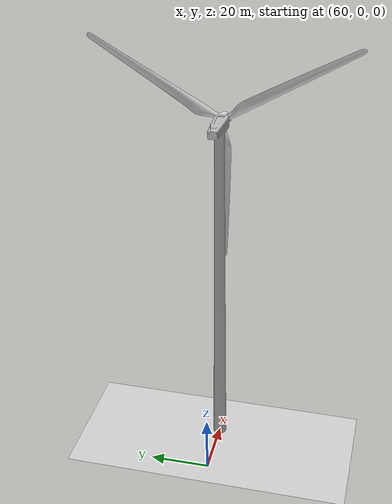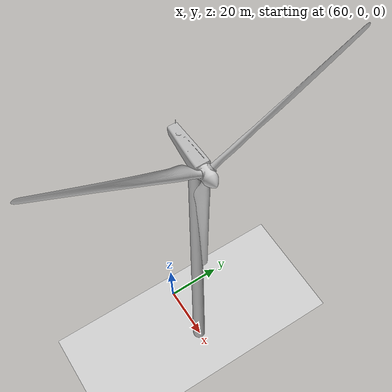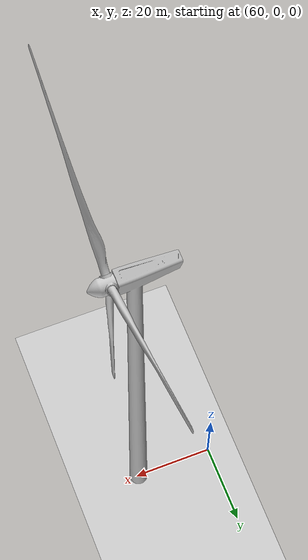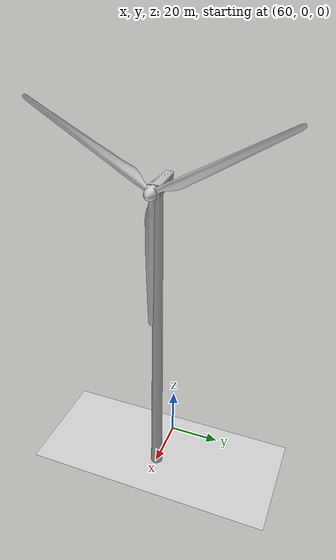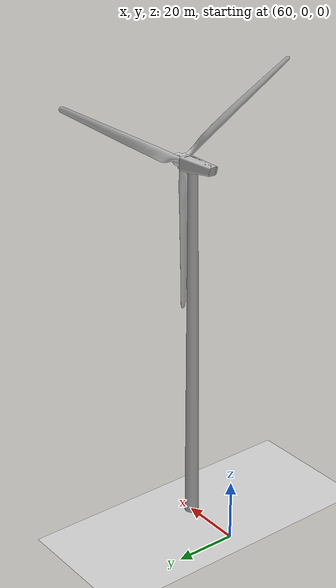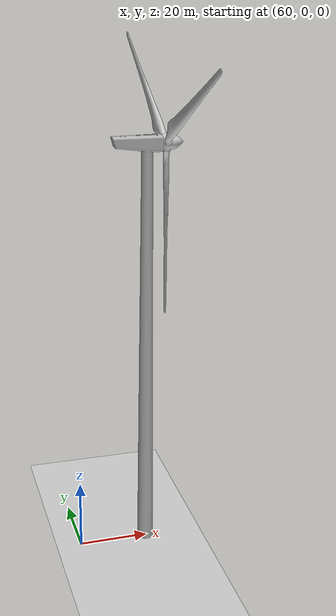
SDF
<?xml version="1.0" ?>
<sdf version="1.5">
  <world name="default">
    <include>
      <uri>model://sun</uri>
    </include>
    <include>
      <uri>model://ground_plane</uri>
    </include>
    <include>
      <uri>model://asphalt_plane</uri>
    </include>

    <include>
      <uri>model://wind_turbine_70m</uri>
      <name>wind_turbine_70m</name>
      <pose>80 0 0 0 0 0</pose>
    </include>

    <gui fullscreen='0'>
      <camera name='user_camera'>
        <pose>10 -15 5 0 0.2 0.8</pose>
        <view_controller>orbit</view_controller>
        <projection_type>perspective</projection_type>
      </camera>
    </gui>

    <physics name='default_physics' default='0' type='ode'>
      <gravity>0 0 -9.8066</gravity>
      <ode>
        <solver>
          <type>quick</type>
          <iters>10</iters>
          <sor>1.3</sor>
          <use_dynamic_moi_rescaling>0</use_dynamic_moi_rescaling>
        </solver>
        <constraints>
          <cfm>0</cfm>
          <erp>0.2</erp>
          <contact_max_correcting_vel>100</contact_max_correcting_vel>
          <contact_surface_layer>0.001</contact_surface_layer>
        </constraints>
      </ode>
      <max_step_size>0.004</max_step_size>
      <real_time_factor>1</real_time_factor>
      <real_time_update_rate>250</real_time_update_rate>
      <magnetic_field>6.0e-6 2.3e-5 -4.2e-5</magnetic_field>
    </physics>
  </world>
</sdf>

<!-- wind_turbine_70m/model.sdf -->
<sdf version="1.4">
  <model name="wind_turbine_70">
    <static>true</static>
        <link name="hub_link">
          <visual name="visual">
            <cast_shadows>false</cast_shadows>
            <pose>3.38 0 119 3.14159 0 0</pose>
            <geometry>
              <mesh>
                <uri>model://wind_turbine_70m/meshes/wind_turbine_hub.dae</uri>
              </mesh>
            </geometry>
          </visual>

      <visual name="visual_blade1">
        <cast_shadows>false</cast_shadows>
        <pose>4.71 0 119 3.14159 0 0</pose>
        <geometry>
          <mesh>
            <uri>model://wind_turbine_70m/meshes/wind_turbine_blade.dae</uri>
          </mesh>
        </geometry>
      </visual>
        <visual name="visual_blade2">
        <cast_shadows>false</cast_shadows>
        <pose>4.71 0 119 1.0472 0 0</pose>
        <geometry>
          <mesh>
            <uri>model://wind_turbine_70m/meshes/wind_turbine_blade.dae</uri>
          </mesh>
        </geometry>
      </visual>
        <visual name="visual_blade3">
        <cast_shadows>false</cast_shadows>
        <pose>4.71 0 119 -1.0472 0 0</pose>
        <geometry>
          <mesh>
            <uri>model://wind_turbine_70m/meshes/wind_turbine_blade.dae</uri>
          </mesh>
        </geometry>
      </visual>
      <visual name="visual_tower">
        <cast_shadows>false</cast_shadows>
        <pose>0 0 0 0 0 0</pose>
        <geometry>
          <mesh>
            <uri>model://wind_turbine_70m/meshes/wind_turbine_tower119.dae</uri>
          </mesh>
        </geometry>
      </visual>
        </link>
  </model>
</sdf>
